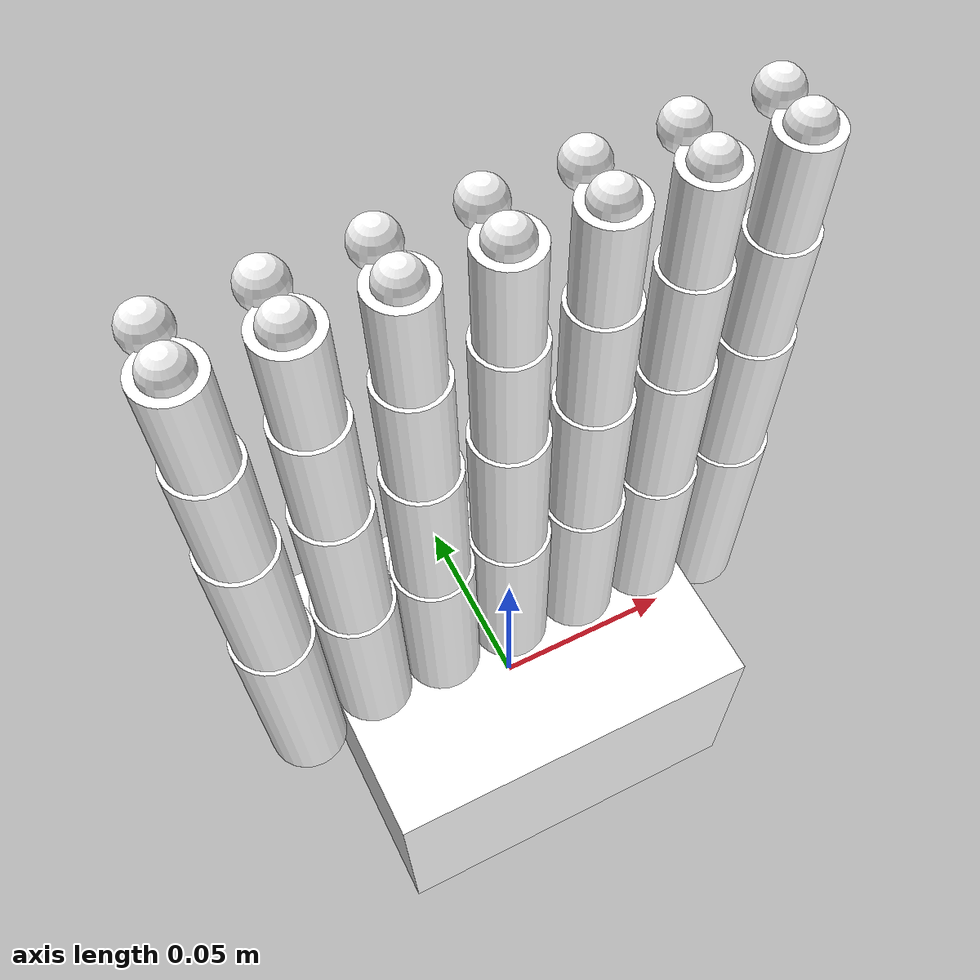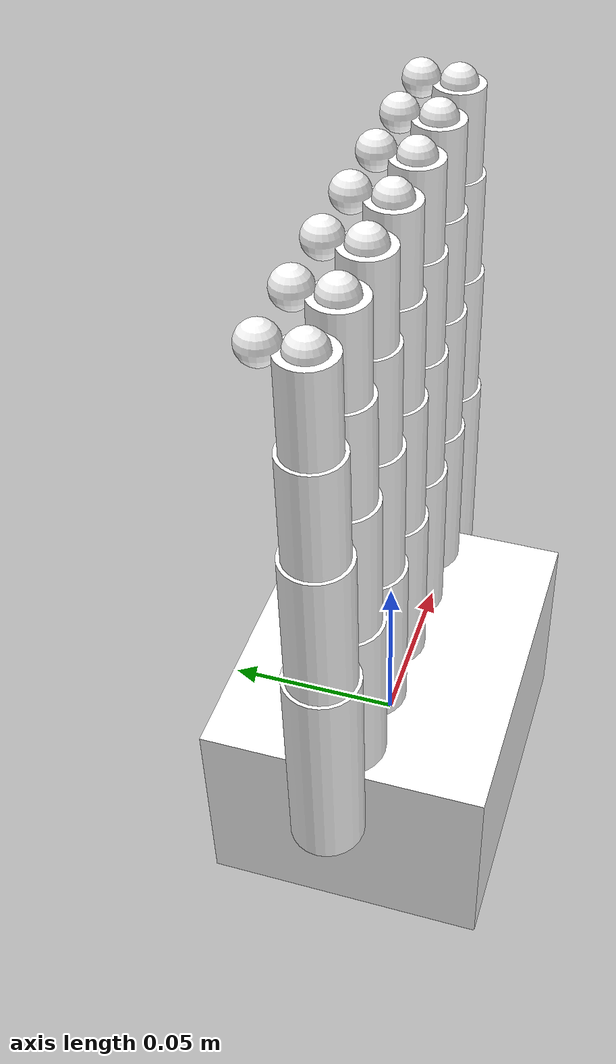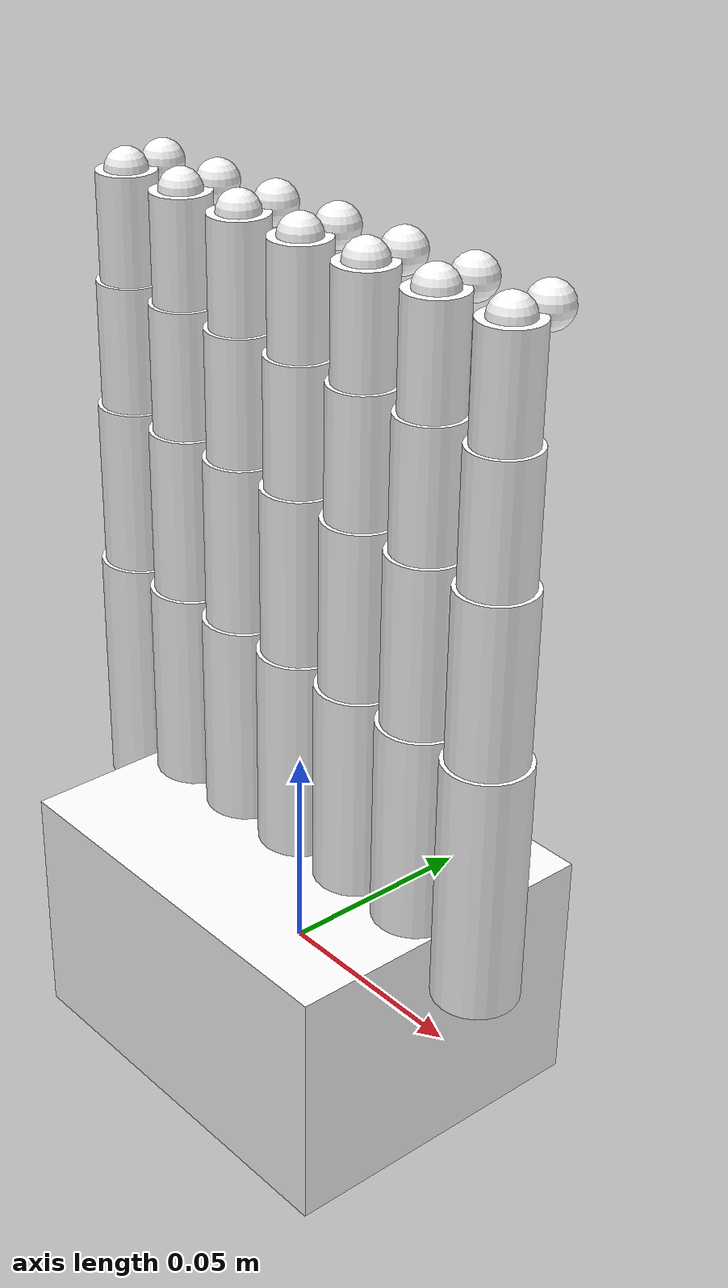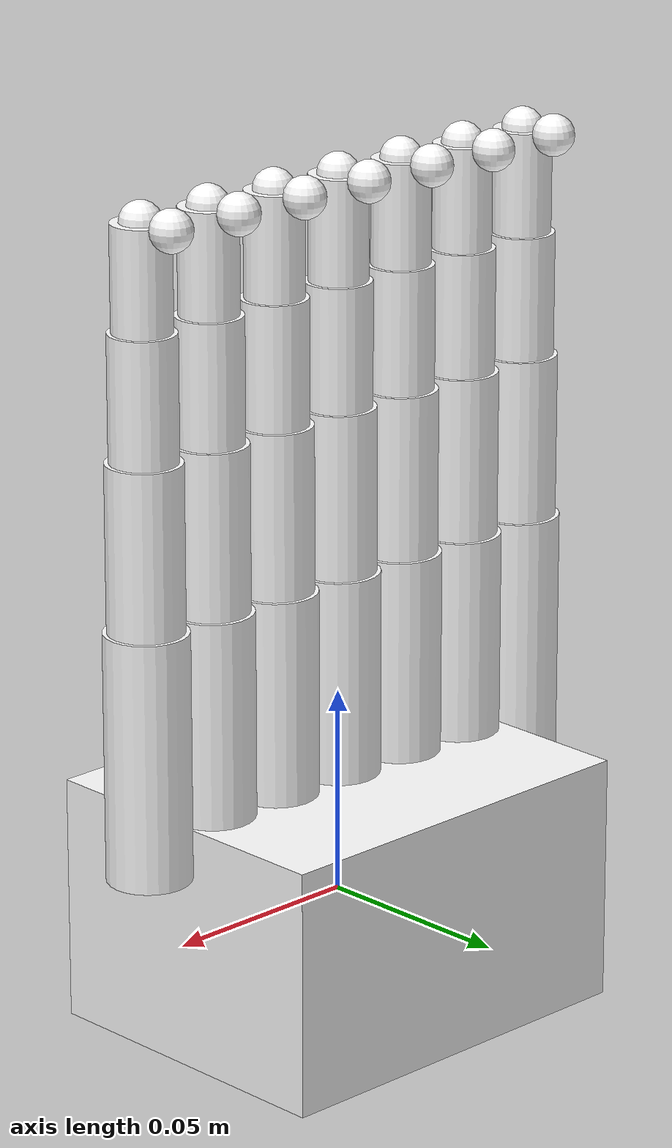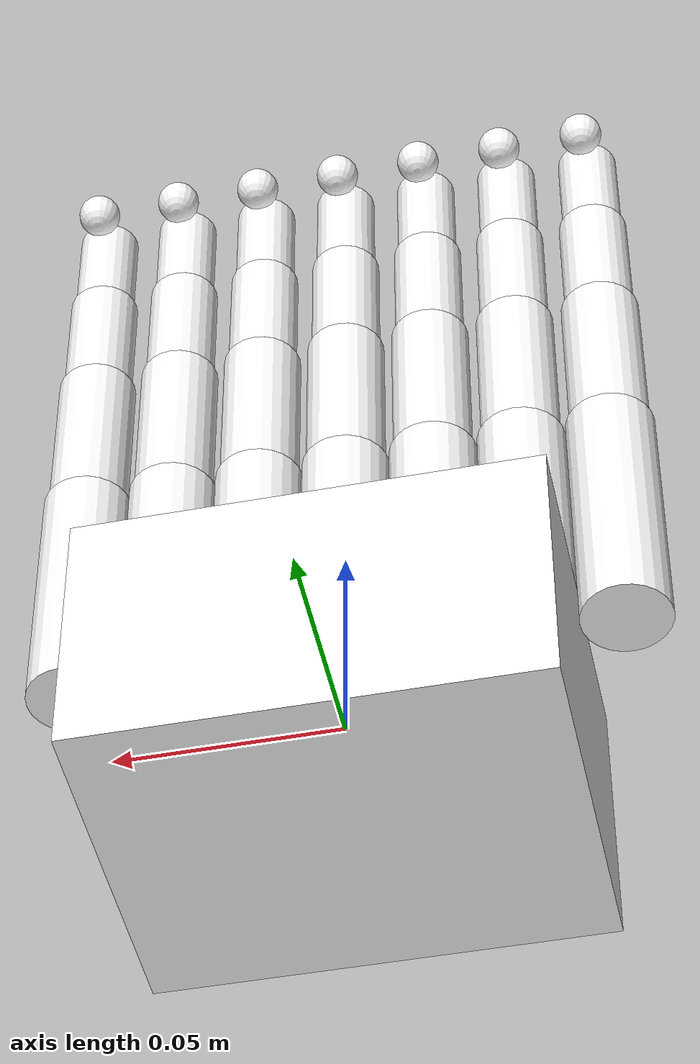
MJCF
<?xml version="1.0" ?>
<mujoco model="allegro_hand_with_sensors">
  <compiler angle="radian"/>

  <default>
    <geom friction="1.0 0.1 0.1" margin="0.001"/>
    <joint armature="0.01" damping="0.1"/>
  </default>

  <asset>
    <material name="hand_material" rgb="0.9 0.6 0.4" reflectance="0.2"/>
    <material name="red_sensor" rgb="0.8 0.1 0.1" reflectance="0.2"/>
    <material name="blue_sensor" rgb="0.1 0.1 0.8" reflectance="0.2"/>
  </asset>

  <worldbody>
    <!-- Left Allegro Hand -->
    <body name="allegro_left_hand_base">
      <inertial mass="1.0" diaginv="1 1 1"/>
      <geom name="left_palm" type="box" size="0.05 0.04 0.03" material="hand_material"/>

      <!-- Left Thumb chain (4 joints) -->
      <body name="allegro_left_thumb_link_0" pos="0 0 0.05">
        <inertial mass="0.1" diaginv="10 10 10"/>
        <geom type="cylinder" size="0.01 0.03" material="hand_material"/>
        <joint name="left_hand_joint_0" type="hinge" axis="1 0 0" range="-1.57 1.57"/>

        <body name="allegro_left_thumb_link_1" pos="0 0 0.04">
          <inertial mass="0.08" diaginv="12.5 12.5 12.5"/>
          <geom type="cylinder" size="0.009 0.03" material="hand_material"/>
          <joint name="left_hand_joint_1" type="hinge" axis="1 0 0" range="-1.57 1.57"/>

          <body name="allegro_left_thumb_link_2" pos="0 0 0.035">
            <inertial mass="0.06" diaginv="16.67 16.67 16.67"/>
            <geom type="cylinder" size="0.008 0.025" material="hand_material"/>
            <joint name="left_hand_joint_2" type="hinge" axis="1 0 0" range="-1.57 1.57"/>

            <body name="allegro_left_thumb_link_3" pos="0 0 0.03">
              <inertial mass="0.05" diaginv="20 20 20"/>
              <geom type="cylinder" size="0.007 0.02" material="hand_material"/>
              <joint name="left_hand_joint_3" type="hinge" axis="1 0 0" range="-1.57 1.57"/>
              <site name="left_thumb_touch" type="sphere" size="0.005" pos="0 0 0.02" material="red_sensor"/>
              <site name="left_thumb_touch_1" type="sphere" size="0.005" pos="0 0.01 0.02" material="red_sensor"/>
            </body>
          </body>
        </body>
      </body>

      <!-- Left Index finger chain (4 joints) -->
      <body name="allegro_left_index_link_0" pos="0.02 0 0.05">
        <inertial mass="0.1" diaginv="10 10 10"/>
        <geom type="cylinder" size="0.01 0.03" material="hand_material"/>
        <joint name="left_hand_joint_4" type="hinge" axis="1 0 0" range="-1.57 1.57"/>

        <body name="allegro_left_index_link_1" pos="0 0 0.04">
          <inertial mass="0.08" diaginv="12.5 12.5 12.5"/>
          <geom type="cylinder" size="0.009 0.03" material="hand_material"/>
          <joint name="left_hand_joint_5" type="hinge" axis="1 0 0" range="-1.57 1.57"/>

          <body name="allegro_left_index_link_2" pos="0 0 0.035">
            <inertial mass="0.06" diaginv="16.67 16.67 16.67"/>
            <geom type="cylinder" size="0.008 0.025" material="hand_material"/>
            <joint name="left_hand_joint_6" type="hinge" axis="1 0 0" range="-1.57 1.57"/>

            <body name="allegro_left_index_link_3" pos="0 0 0.03">
              <inertial mass="0.05" diaginv="20 20 20"/>
              <geom type="cylinder" size="0.007 0.02" material="hand_material"/>
              <joint name="left_hand_joint_7" type="hinge" axis="1 0 0" range="-1.57 1.57"/>
              <site name="left_index_touch" type="sphere" size="0.005" pos="0 0 0.02" material="red_sensor"/>
              <site name="left_index_touch_1" type="sphere" size="0.005" pos="0 0.01 0.02" material="red_sensor"/>
            </body>
          </body>
        </body>
      </body>

      <!-- Left Middle finger chain (4 joints) -->
      <body name="allegro_left_middle_link_0" pos="0.04 0 0.05">
        <inertial mass="0.1" diaginv="10 10 10"/>
        <geom type="cylinder" size="0.01 0.03" material="hand_material"/>
        <joint name="left_hand_joint_8" type="hinge" axis="1 0 0" range="-1.57 1.57"/>

        <body name="allegro_left_middle_link_1" pos="0 0 0.04">
          <inertial mass="0.08" diaginv="12.5 12.5 12.5"/>
          <geom type="cylinder" size="0.009 0.03" material="hand_material"/>
          <joint name="left_hand_joint_9" type="hinge" axis="1 0 0" range="-1.57 1.57"/>

          <body name="allegro_left_middle_link_2" pos="0 0 0.035">
            <inertial mass="0.06" diaginv="16.67 16.67 16.67"/>
            <geom type="cylinder" size="0.008 0.025" material="hand_material"/>
            <joint name="left_hand_joint_10" type="hinge" axis="1 0 0" range="-1.57 1.57"/>

            <body name="allegro_left_middle_link_3" pos="0 0 0.03">
              <inertial mass="0.05" diaginv="20 20 20"/>
              <geom type="cylinder" size="0.007 0.02" material="hand_material"/>
              <joint name="left_hand_joint_11" type="hinge" axis="1 0 0" range="-1.57 1.57"/>
              <site name="left_middle_touch" type="sphere" size="0.005" pos="0 0 0.02" material="red_sensor"/>
              <site name="left_middle_touch_1" type="sphere" size="0.005" pos="0 0.01 0.02" material="red_sensor"/>
            </body>
          </body>
        </body>
      </body>

      <!-- Left Ring finger chain (4 joints) -->
      <body name="allegro_left_ring_link_0" pos="0.06 0 0.05">
        <inertial mass="0.1" diaginv="10 10 10"/>
        <geom type="cylinder" size="0.01 0.03" material="hand_material"/>
        <joint name="left_hand_joint_12" type="hinge" axis="1 0 0" range="-1.57 1.57"/>

        <body name="allegro_left_ring_link_1" pos="0 0 0.04">
          <inertial mass="0.08" diaginv="12.5 12.5 12.5"/>
          <geom type="cylinder" size="0.009 0.03" material="hand_material"/>
          <joint name="left_hand_joint_13" type="hinge" axis="1 0 0" range="-1.57 1.57"/>

          <body name="allegro_left_ring_link_2" pos="0 0 0.035">
            <inertial mass="0.06" diaginv="16.67 16.67 16.67"/>
            <geom type="cylinder" size="0.008 0.025" material="hand_material"/>
            <joint name="left_hand_joint_14" type="hinge" axis="1 0 0" range="-1.57 1.57"/>

            <body name="allegro_left_ring_link_3" pos="0 0 0.03">
              <inertial mass="0.05" diaginv="20 20 20"/>
              <geom type="cylinder" size="0.007 0.02" material="hand_material"/>
              <joint name="left_hand_joint_15" type="hinge" axis="1 0 0" range="-1.57 1.57"/>
              <site name="left_ring_touch" type="sphere" size="0.005" pos="0 0 0.02" material="red_sensor"/>
              <site name="left_ring_touch_1" type="sphere" size="0.005" pos="0 0.01 0.02" material="red_sensor"/>
            </body>
          </body>
        </body>
      </body>
    </body>

    <!-- Right Allegro Hand (mirror) -->
    <body name="allegro_right_hand_base">
      <inertial mass="1.0" diaginv="1 1 1"/>
      <geom name="right_palm" type="box" size="0.05 0.04 0.03" material="hand_material"/>

      <!-- Right Thumb chain (4 joints) -->
      <body name="allegro_right_thumb_link_0" pos="0 0 0.05">
        <inertial mass="0.1" diaginv="10 10 10"/>
        <geom type="cylinder" size="0.01 0.03" material="hand_material"/>
        <joint name="right_hand_joint_0" type="hinge" axis="1 0 0" range="-1.57 1.57"/>

        <body name="allegro_right_thumb_link_1" pos="0 0 0.04">
          <inertial mass="0.08" diaginv="12.5 12.5 12.5"/>
          <geom type="cylinder" size="0.009 0.03" material="hand_material"/>
          <joint name="right_hand_joint_1" type="hinge" axis="1 0 0" range="-1.57 1.57"/>

          <body name="allegro_right_thumb_link_2" pos="0 0 0.035">
            <inertial mass="0.06" diaginv="16.67 16.67 16.67"/>
            <geom type="cylinder" size="0.008 0.025" material="hand_material"/>
            <joint name="right_hand_joint_2" type="hinge" axis="1 0 0" range="-1.57 1.57"/>

            <body name="allegro_right_thumb_link_3" pos="0 0 0.03">
              <inertial mass="0.05" diaginv="20 20 20"/>
              <geom type="cylinder" size="0.007 0.02" material="hand_material"/>
              <joint name="right_hand_joint_3" type="hinge" axis="1 0 0" range="-1.57 1.57"/>
              <site name="right_thumb_touch" type="sphere" size="0.005" pos="0 0 0.02" material="blue_sensor"/>
              <site name="right_thumb_touch_1" type="sphere" size="0.005" pos="0 0.01 0.02" material="blue_sensor"/>
            </body>
          </body>
        </body>
      </body>

      <!-- Right Index finger chain (4 joints) -->
      <body name="allegro_right_index_link_0" pos="-0.02 0 0.05">
        <inertial mass="0.1" diaginv="10 10 10"/>
        <geom type="cylinder" size="0.01 0.03" material="hand_material"/>
        <joint name="right_hand_joint_4" type="hinge" axis="1 0 0" range="-1.57 1.57"/>

        <body name="allegro_right_index_link_1" pos="0 0 0.04">
          <inertial mass="0.08" diaginv="12.5 12.5 12.5"/>
          <geom type="cylinder" size="0.009 0.03" material="hand_material"/>
          <joint name="right_hand_joint_5" type="hinge" axis="1 0 0" range="-1.57 1.57"/>

          <body name="allegro_right_index_link_2" pos="0 0 0.035">
            <inertial mass="0.06" diaginv="16.67 16.67 16.67"/>
            <geom type="cylinder" size="0.008 0.025" material="hand_material"/>
            <joint name="right_hand_joint_6" type="hinge" axis="1 0 0" range="-1.57 1.57"/>

            <body name="allegro_right_index_link_3" pos="0 0 0.03">
              <inertial mass="0.05" diaginv="20 20 20"/>
              <geom type="cylinder" size="0.007 0.02" material="hand_material"/>
              <joint name="right_hand_joint_7" type="hinge" axis="1 0 0" range="-1.57 1.57"/>
              <site name="right_index_touch" type="sphere" size="0.005" pos="0 0 0.02" material="blue_sensor"/>
              <site name="right_index_touch_1" type="sphere" size="0.005" pos="0 0.01 0.02" material="blue_sensor"/>
            </body>
          </body>
        </body>
      </body>

      <!-- Right Middle finger chain (4 joints) -->
      <body name="allegro_right_middle_link_0" pos="-0.04 0 0.05">
        <inertial mass="0.1" diaginv="10 10 10"/>
        <geom type="cylinder" size="0.01 0.03" material="hand_material"/>
        <joint name="right_hand_joint_8" type="hinge" axis="1 0 0" range="-1.57 1.57"/>

        <body name="allegro_right_middle_link_1" pos="0 0 0.04">
          <inertial mass="0.08" diaginv="12.5 12.5 12.5"/>
          <geom type="cylinder" size="0.009 0.03" material="hand_material"/>
          <joint name="right_hand_joint_9" type="hinge" axis="1 0 0" range="-1.57 1.57"/>

          <body name="allegro_right_middle_link_2" pos="0 0 0.035">
            <inertial mass="0.06" diaginv="16.67 16.67 16.67"/>
            <geom type="cylinder" size="0.008 0.025" material="hand_material"/>
            <joint name="right_hand_joint_10" type="hinge" axis="1 0 0" range="-1.57 1.57"/>

            <body name="allegro_right_middle_link_3" pos="0 0 0.03">
              <inertial mass="0.05" diaginv="20 20 20"/>
              <geom type="cylinder" size="0.007 0.02" material="hand_material"/>
              <joint name="right_hand_joint_11" type="hinge" axis="1 0 0" range="-1.57 1.57"/>
              <site name="right_middle_touch" type="sphere" size="0.005" pos="0 0 0.02" material="blue_sensor"/>
              <site name="right_middle_touch_1" type="sphere" size="0.005" pos="0 0.01 0.02" material="blue_sensor"/>
            </body>
          </body>
        </body>
      </body>

      <!-- Right Ring finger chain (4 joints) -->
      <body name="allegro_right_ring_link_0" pos="-0.06 0 0.05">
        <inertial mass="0.1" diaginv="10 10 10"/>
        <geom type="cylinder" size="0.01 0.03" material="hand_material"/>
        <joint name="right_hand_joint_12" type="hinge" axis="1 0 0" range="-1.57 1.57"/>

        <body name="allegro_right_ring_link_1" pos="0 0 0.04">
          <inertial mass="0.08" diaginv="12.5 12.5 12.5"/>
          <geom type="cylinder" size="0.009 0.03" material="hand_material"/>
          <joint name="right_hand_joint_13" type="hinge" axis="1 0 0" range="-1.57 1.57"/>

          <body name="allegro_right_ring_link_2" pos="0 0 0.035">
            <inertial mass="0.06" diaginv="16.67 16.67 16.67"/>
            <geom type="cylinder" size="0.008 0.025" material="hand_material"/>
            <joint name="right_hand_joint_14" type="hinge" axis="1 0 0" range="-1.57 1.57"/>

            <body name="allegro_right_ring_link_3" pos="0 0 0.03">
              <inertial mass="0.05" diaginv="20 20 20"/>
              <geom type="cylinder" size="0.007 0.02" material="hand_material"/>
              <joint name="right_hand_joint_15" type="hinge" axis="1 0 0" range="-1.57 1.57"/>
              <site name="right_ring_touch" type="sphere" size="0.005" pos="0 0 0.02" material="blue_sensor"/>
              <site name="right_ring_touch_1" type="sphere" size="0.005" pos="0 0.01 0.02" material="blue_sensor"/>
            </body>
          </body>
        </body>
      </body>
    </body>
  </worldbody>
</mujoco>
